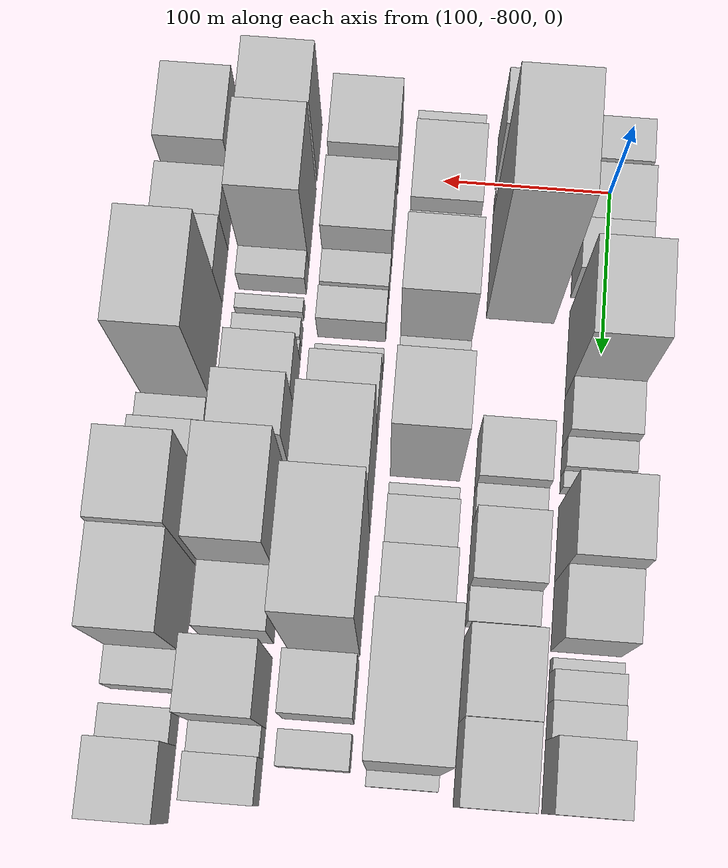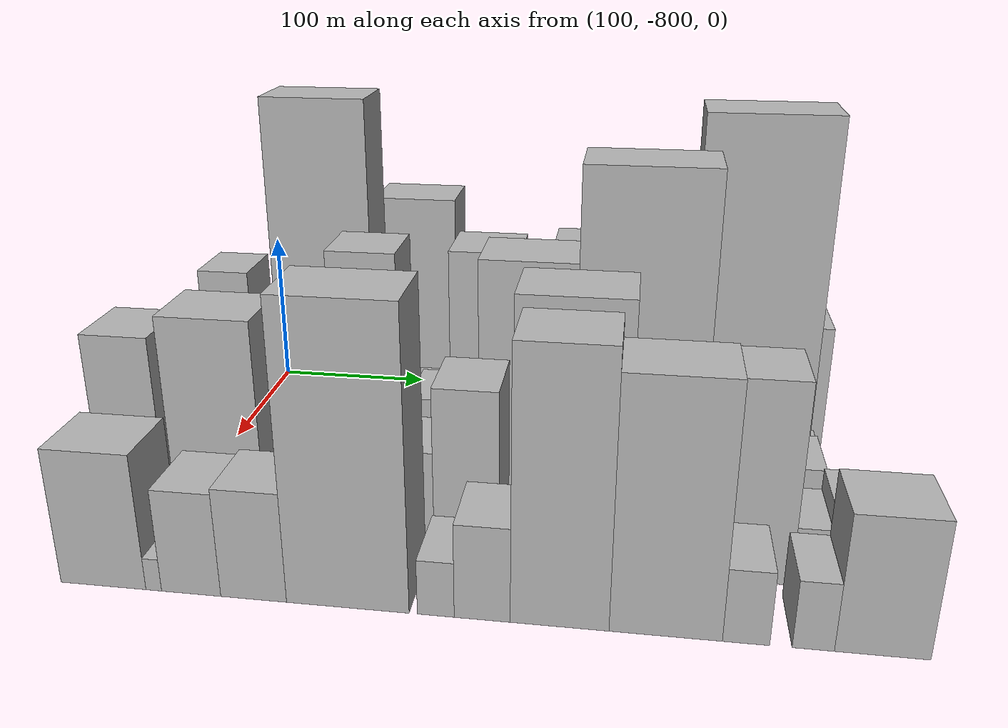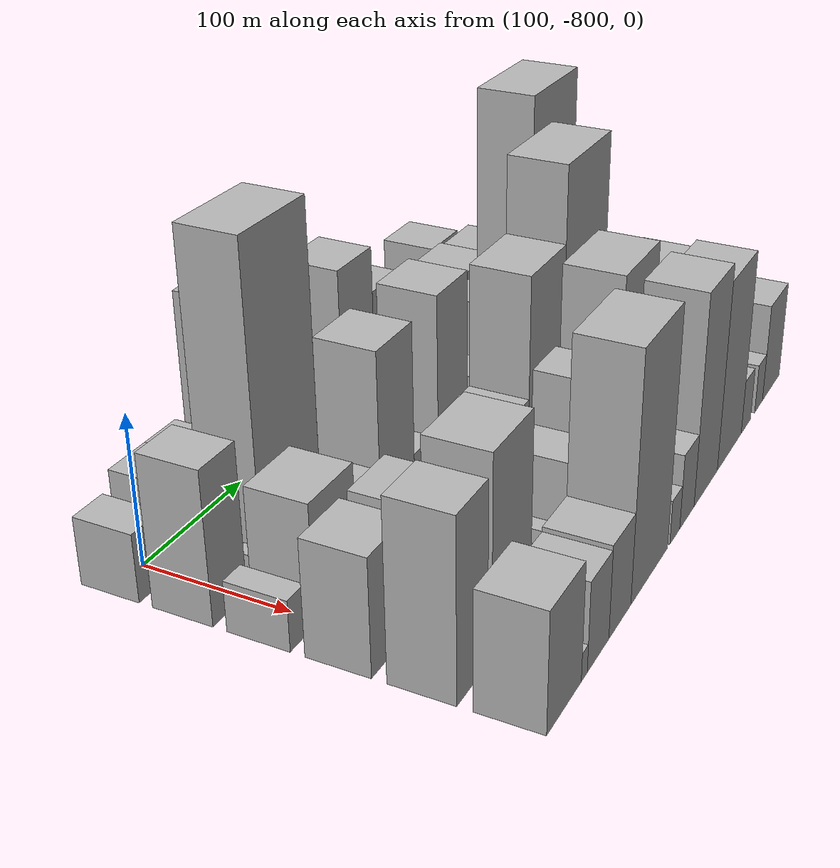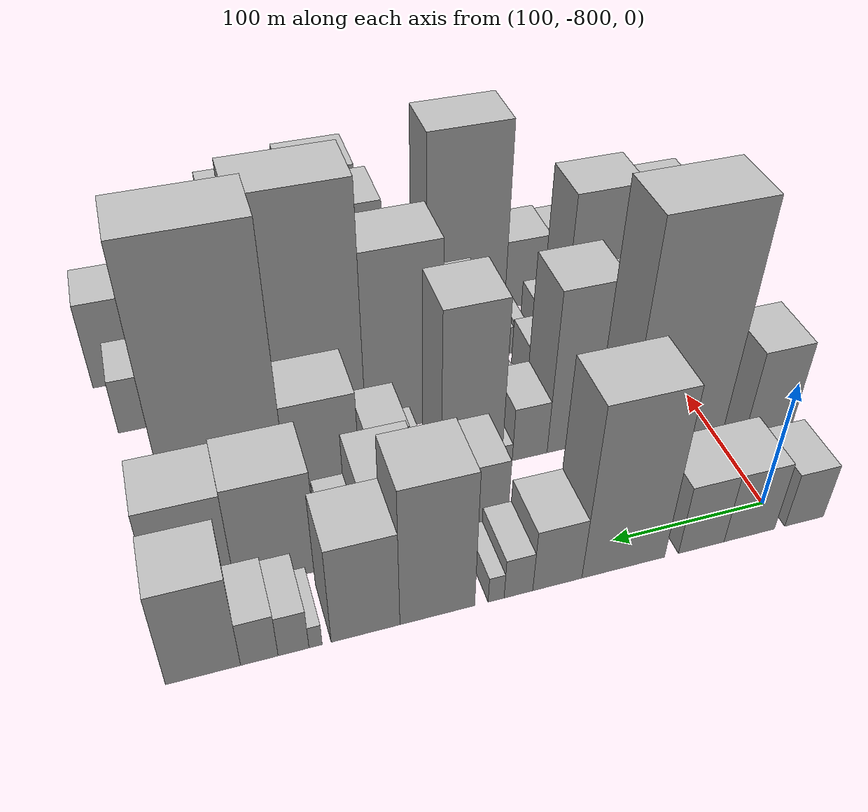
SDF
<sdf version="1.6">
 <world name="default">
  <model name="building_1">
   <static>1</static>
   <pose>100.0000 -816.8060 0 0.000000 0.000000 0.000000</pose>
   <link name="link">
    <pose>0 0 22.50 0 0 0</pose>
    <collision name="collision"><geometry><box><size>40.0000 26.3879 45.0000</size></box></geometry></collision>
    <visual name="visual">
     <cast_shadows>0</cast_shadows>
     <geometry><box><size>40.0000 26.3879 45.0000</size></box></geometry>
     <material>
      <script>
       <uri>model://HANNAS_wall/materials/scripts</uri>
       <uri>model://HANNAS_wall/materials/textures</uri>
       <name>vrc/HANNAS_wall</name>
      </script>
     </material>
    </visual>
   </link>
  </model>
  <model name="building_2">
   <static>1</static>
   <pose>100.0000 -779.7207 0 0.000000 0.000000 0.000000</pose>
   <link name="link">
    <pose>0 0 28.50 0 0 0</pose>
    <collision name="collision"><geometry><box><size>40.0000 33.7827 57.0000</size></box></geometry></collision>
    <visual name="visual">
     <cast_shadows>0</cast_shadows>
     <geometry><box><size>40.0000 33.7827 57.0000</size></box></geometry>
     <material>
      <script>
       <uri>model://HANNAS_wall/materials/scripts</uri>
       <uri>model://HANNAS_wall/materials/textures</uri>
       <name>vrc/HANNAS_wall</name>
      </script>
     </material>
    </visual>
   </link>
  </model>
  <model name="building_3">
   <static>1</static>
   <pose>100.0000 -747.8682 0 0.000000 0.000000 0.000000</pose>
   <link name="link">
    <pose>0 0 28.50 0 0 0</pose>
    <collision name="collision"><geometry><box><size>40.0000 29.9222 57.0000</size></box></geometry></collision>
    <visual name="visual">
     <cast_shadows>0</cast_shadows>
     <geometry><box><size>40.0000 29.9222 57.0000</size></box></geometry>
     <material>
      <script>
       <uri>model://HANNAS_wall/materials/scripts</uri>
       <uri>model://HANNAS_wall/materials/textures</uri>
       <name>vrc/HANNAS_wall</name>
      </script>
     </material>
    </visual>
   </link>
  </model>
  <model name="building_4">
   <static>1</static>
   <pose>100.0000 -697.7125 0 0.000000 0.000000 0.000000</pose>
   <link name="link">
    <pose>0 0 69.00 0 0 0</pose>
    <collision name="collision"><geometry><box><size>40.0000 52.3893 138.0000</size></box></geometry></collision>
    <visual name="visual">
     <cast_shadows>0</cast_shadows>
     <geometry><box><size>40.0000 52.3893 138.0000</size></box></geometry>
     <material>
      <script>
       <uri>model://HANNAS_wall/materials/scripts</uri>
       <uri>model://HANNAS_wall/materials/textures</uri>
       <name>vrc/HANNAS_wall</name>
      </script>
     </material>
    </visual>
   </link>
  </model>
  <model name="building_5">
   <static>1</static>
   <pose>100.0000 -656.4167 0 0.000000 0.000000 0.000000</pose>
   <link name="link">
    <pose>0 0 25.50 0 0 0</pose>
    <collision name="collision"><geometry><box><size>40.0000 30.2022 51.0000</size></box></geometry></collision>
    <visual name="visual">
     <cast_shadows>0</cast_shadows>
     <geometry><box><size>40.0000 30.2022 51.0000</size></box></geometry>
     <material>
      <script>
       <uri>model://HANNAS_wall/materials/scripts</uri>
       <uri>model://HANNAS_wall/materials/textures</uri>
       <name>vrc/HANNAS_wall</name>
      </script>
     </material>
    </visual>
   </link>
  </model>
  <model name="building_6">
   <static>1</static>
   <pose>100.0000 -632.6692 0 0.000000 0.000000 0.000000</pose>
   <link name="link">
    <pose>0 0 16.50 0 0 0</pose>
    <collision name="collision"><geometry><box><size>40.0000 17.2929 33.0000</size></box></geometry></collision>
    <visual name="visual">
     <cast_shadows>0</cast_shadows>
     <geometry><box><size>40.0000 17.2929 33.0000</size></box></geometry>
     <material>
      <script>
       <uri>model://HANNAS_wall/materials/scripts</uri>
       <uri>model://HANNAS_wall/materials/textures</uri>
       <name>vrc/HANNAS_wall</name>
      </script>
     </material>
    </visual>
   </link>
  </model>
  <model name="building_7">
   <static>1</static>
   <pose>100.0000 -619.2423 0 0.000000 0.000000 0.000000</pose>
   <link name="link">
    <pose>0 0 10.50 0 0 0</pose>
    <collision name="collision"><geometry><box><size>40.0000 9.5608 21.0000</size></box></geometry></collision>
    <visual name="visual">
     <cast_shadows>0</cast_shadows>
     <geometry><box><size>40.0000 9.5608 21.0000</size></box></geometry>
     <material>
      <script>
       <uri>model://HANNAS_wall/materials/scripts</uri>
       <uri>model://HANNAS_wall/materials/textures</uri>
       <name>vrc/HANNAS_wall</name>
      </script>
     </material>
    </visual>
   </link>
  </model>
  <model name="building_8">
   <static>1</static>
   <pose>100.0000 -584.6158 0 0.000000 0.000000 0.000000</pose>
   <link name="link">
    <pose>0 0 55.50 0 0 0</pose>
    <collision name="collision"><geometry><box><size>40.0000 43.6923 111.0000</size></box></geometry></collision>
    <visual name="visual">
     <cast_shadows>0</cast_shadows>
     <geometry><box><size>40.0000 43.6923 111.0000</size></box></geometry>
     <material>
      <script>
       <uri>model://HANNAS_wall/materials/scripts</uri>
       <uri>model://HANNAS_wall/materials/textures</uri>
       <name>vrc/HANNAS_wall</name>
      </script>
     </material>
    </visual>
   </link>
  </model>
  <model name="building_9">
   <static>1</static>
   <pose>100.0000 -543.2670 0 0.000000 0.000000 0.000000</pose>
   <link name="link">
    <pose>0 0 39.00 0 0 0</pose>
    <collision name="collision"><geometry><box><size>40.0000 39.0051 78.0000</size></box></geometry></collision>
    <visual name="visual">
     <cast_shadows>0</cast_shadows>
     <geometry><box><size>40.0000 39.0051 78.0000</size></box></geometry>
     <material>
      <script>
       <uri>model://HANNAS_wall/materials/scripts</uri>
       <uri>model://HANNAS_wall/materials/textures</uri>
       <name>vrc/HANNAS_wall</name>
      </script>
     </material>
    </visual>
   </link>
  </model>
  <model name="building_10">
   <static>1</static>
   <pose>100.0000 -515.0862 0 0.000000 0.000000 0.000000</pose>
   <link name="link">
    <pose>0 0 9.00 0 0 0</pose>
    <collision name="collision"><geometry><box><size>40.0000 7.3565 18.0000</size></box></geometry></collision>
    <visual name="visual">
     <cast_shadows>0</cast_shadows>
     <geometry><box><size>40.0000 7.3565 18.0000</size></box></geometry>
     <material>
      <script>
       <uri>model://HANNAS_wall/materials/scripts</uri>
       <uri>model://HANNAS_wall/materials/textures</uri>
       <name>vrc/HANNAS_wall</name>
      </script>
     </material>
    </visual>
   </link>
  </model>
  <model name="building_11">
   <static>1</static>
   <pose>100.0000 -502.9198 0 0.000000 0.000000 0.000000</pose>
   <link name="link">
    <pose>0 0 16.50 0 0 0</pose>
    <collision name="collision"><geometry><box><size>40.0000 16.9764 33.0000</size></box></geometry></collision>
    <visual name="visual">
     <cast_shadows>0</cast_shadows>
     <geometry><box><size>40.0000 16.9764 33.0000</size></box></geometry>
     <material>
      <script>
       <uri>model://HANNAS_wall/materials/scripts</uri>
       <uri>model://HANNAS_wall/materials/textures</uri>
       <name>vrc/HANNAS_wall</name>
      </script>
     </material>
    </visual>
   </link>
  </model>
  <model name="building_12">
   <static>1</static>
   <pose>100.0000 -484.2531 0 0.000000 0.000000 0.000000</pose>
   <link name="link">
    <pose>0 0 18.00 0 0 0</pose>
    <collision name="collision"><geometry><box><size>40.0000 20.3569 36.0000</size></box></geometry></collision>
    <visual name="visual">
     <cast_shadows>0</cast_shadows>
     <geometry><box><size>40.0000 20.3569 36.0000</size></box></geometry>
     <material>
      <script>
       <uri>model://HANNAS_wall/materials/scripts</uri>
       <uri>model://HANNAS_wall/materials/textures</uri>
       <name>vrc/HANNAS_wall</name>
      </script>
     </material>
    </visual>
   </link>
  </model>
  <model name="building_13">
   <static>1</static>
   <pose>100.0000 -454.1229 0 0.000000 0.000000 0.000000</pose>
   <link name="link">
    <pose>0 0 37.50 0 0 0</pose>
    <collision name="collision"><geometry><box><size>40.0000 39.9035 75.0000</size></box></geometry></collision>
    <visual name="visual">
     <cast_shadows>0</cast_shadows>
     <geometry><box><size>40.0000 39.9035 75.0000</size></box></geometry>
     <material>
      <script>
       <uri>model://HANNAS_wall/materials/scripts</uri>
       <uri>model://HANNAS_wall/materials/textures</uri>
       <name>vrc/HANNAS_wall</name>
      </script>
     </material>
    </visual>
   </link>
  </model>
  <model name="building_53">
   <static>1</static>
   <pose>149.0000 -813.5595 0 0.000000 0.000000 0.000000</pose>
   <link name="link">
    <pose>0 0 49.50 0 0 0</pose>
    <collision name="collision"><geometry><box><size>40.0000 32.8810 99.0000</size></box></geometry></collision>
    <visual name="visual">
     <cast_shadows>0</cast_shadows>
     <geometry><box><size>40.0000 32.8810 99.0000</size></box></geometry>
     <material>
      <script>
       <uri>model://HANNAS_wall/materials/scripts</uri>
       <uri>model://HANNAS_wall/materials/textures</uri>
       <name>vrc/HANNAS_wall</name>
      </script>
     </material>
    </visual>
   </link>
  </model>
  <model name="building_54">
   <static>1</static>
   <pose>149.0000 -785.2769 0 0.000000 0.000000 0.000000</pose>
   <link name="link">
    <pose>0 0 10.50 0 0 0</pose>
    <collision name="collision"><geometry><box><size>40.0000 9.6844 21.0000</size></box></geometry></collision>
    <visual name="visual">
     <cast_shadows>0</cast_shadows>
     <geometry><box><size>40.0000 9.6844 21.0000</size></box></geometry>
     <material>
      <script>
       <uri>model://HANNAS_wall/materials/scripts</uri>
       <uri>model://HANNAS_wall/materials/textures</uri>
       <name>vrc/HANNAS_wall</name>
      </script>
     </material>
    </visual>
   </link>
  </model>
  <model name="building_55">
   <static>1</static>
   <pose>149.0000 -748.3197 0 0.000000 0.000000 0.000000</pose>
   <link name="link">
    <pose>0 0 105.00 0 0 0</pose>
    <collision name="collision"><geometry><box><size>40.0000 64.2299 210.0000</size></box></geometry></collision>
    <visual name="visual">
     <cast_shadows>0</cast_shadows>
     <geometry><box><size>40.0000 64.2299 210.0000</size></box></geometry>
     <material>
      <script>
       <uri>model://HANNAS_wall/materials/scripts</uri>
       <uri>model://HANNAS_wall/materials/textures</uri>
       <name>vrc/HANNAS_wall</name>
      </script>
     </material>
    </visual>
   </link>
  </model>
  <model name="building_56">
   <static>1</static>
   <pose>149.0000 -627.0018 0 0.000000 0.000000 0.000000</pose>
   <link name="link">
    <pose>0 0 28.50 0 0 0</pose>
    <collision name="collision"><geometry><box><size>40.0000 33.4686 57.0000</size></box></geometry></collision>
    <visual name="visual">
     <cast_shadows>0</cast_shadows>
     <geometry><box><size>40.0000 33.4686 57.0000</size></box></geometry>
     <material>
      <script>
       <uri>model://HANNAS_wall/materials/scripts</uri>
       <uri>model://HANNAS_wall/materials/textures</uri>
       <name>vrc/HANNAS_wall</name>
      </script>
     </material>
    </visual>
   </link>
  </model>
  <model name="building_57">
   <static>1</static>
   <pose>149.0000 -601.2485 0 0.000000 0.000000 0.000000</pose>
   <link name="link">
    <pose>0 0 18.00 0 0 0</pose>
    <collision name="collision"><geometry><box><size>40.0000 18.0380 36.0000</size></box></geometry></collision>
    <visual name="visual">
     <cast_shadows>0</cast_shadows>
     <geometry><box><size>40.0000 18.0380 36.0000</size></box></geometry>
     <material>
      <script>
       <uri>model://HANNAS_wall/materials/scripts</uri>
       <uri>model://HANNAS_wall/materials/textures</uri>
       <name>vrc/HANNAS_wall</name>
      </script>
     </material>
    </visual>
   </link>
  </model>
  <model name="building_58">
   <static>1</static>
   <pose>149.0000 -572.6201 0 0.000000 0.000000 0.000000</pose>
   <link name="link">
    <pose>0 0 33.00 0 0 0</pose>
    <collision name="collision"><geometry><box><size>40.0000 39.2188 66.0000</size></box></geometry></collision>
    <visual name="visual">
     <cast_shadows>0</cast_shadows>
     <geometry><box><size>40.0000 39.2188 66.0000</size></box></geometry>
     <material>
      <script>
       <uri>model://HANNAS_wall/materials/scripts</uri>
       <uri>model://HANNAS_wall/materials/textures</uri>
       <name>vrc/HANNAS_wall</name>
      </script>
     </material>
    </visual>
   </link>
  </model>
  <model name="building_59">
   <static>1</static>
   <pose>149.0000 -543.3109 0 0.000000 0.000000 0.000000</pose>
   <link name="link">
    <pose>0 0 16.50 0 0 0</pose>
    <collision name="collision"><geometry><box><size>40.0000 19.3997 33.0000</size></box></geometry></collision>
    <visual name="visual">
     <cast_shadows>0</cast_shadows>
     <geometry><box><size>40.0000 19.3997 33.0000</size></box></geometry>
     <material>
      <script>
       <uri>model://HANNAS_wall/materials/scripts</uri>
       <uri>model://HANNAS_wall/materials/textures</uri>
       <name>vrc/HANNAS_wall</name>
      </script>
     </material>
    </visual>
   </link>
  </model>
  <model name="building_60">
   <static>1</static>
   <pose>149.0000 -503.5934 0 0.000000 0.000000 0.000000</pose>
   <link name="link">
    <pose>0 0 42.00 0 0 0</pose>
    <collision name="collision"><geometry><box><size>40.0000 48.0353 84.0000</size></box></geometry></collision>
    <visual name="visual">
     <cast_shadows>0</cast_shadows>
     <geometry><box><size>40.0000 48.0353 84.0000</size></box></geometry>
     <material>
      <script>
       <uri>model://HANNAS_wall/materials/scripts</uri>
       <uri>model://HANNAS_wall/materials/textures</uri>
       <name>vrc/HANNAS_wall</name>
      </script>
     </material>
    </visual>
   </link>
  </model>
  <model name="building_61">
   <static>1</static>
   <pose>149.0000 -456.7416 0 0.000000 0.000000 0.000000</pose>
   <link name="link">
    <pose>0 0 40.50 0 0 0</pose>
    <collision name="collision"><geometry><box><size>40.0000 45.6681 81.0000</size></box></geometry></collision>
    <visual name="visual">
     <cast_shadows>0</cast_shadows>
     <geometry><box><size>40.0000 45.6681 81.0000</size></box></geometry>
     <material>
      <script>
       <uri>model://HANNAS_wall/materials/scripts</uri>
       <uri>model://HANNAS_wall/materials/textures</uri>
       <name>vrc/HANNAS_wall</name>
      </script>
     </material>
    </visual>
   </link>
  </model>
  <model name="building_95">
   <static>1</static>
   <pose>198.0000 -821.6058 0 0.000000 0.000000 0.000000</pose>
   <link name="link">
    <pose>0 0 16.50 0 0 0</pose>
    <collision name="collision"><geometry><box><size>40.0000 16.7884 33.0000</size></box></geometry></collision>
    <visual name="visual">
     <cast_shadows>0</cast_shadows>
     <geometry><box><size>40.0000 16.7884 33.0000</size></box></geometry>
     <material>
      <script>
       <uri>model://HANNAS_wall/materials/scripts</uri>
       <uri>model://HANNAS_wall/materials/textures</uri>
       <name>vrc/HANNAS_wall</name>
      </script>
     </material>
    </visual>
   </link>
  </model>
  <model name="building_96">
   <static>1</static>
   <pose>198.0000 -782.1091 0 0.000000 0.000000 0.000000</pose>
   <link name="link">
    <pose>0 0 39.00 0 0 0</pose>
    <collision name="collision"><geometry><box><size>40.0000 46.2050 78.0000</size></box></geometry></collision>
    <visual name="visual">
     <cast_shadows>0</cast_shadows>
     <geometry><box><size>40.0000 46.2050 78.0000</size></box></geometry>
     <material>
      <script>
       <uri>model://HANNAS_wall/materials/scripts</uri>
       <uri>model://HANNAS_wall/materials/textures</uri>
       <name>vrc/HANNAS_wall</name>
      </script>
     </material>
    </visual>
   </link>
  </model>
  <model name="building_97">
   <static>1</static>
   <pose>198.0000 -744.5880 0 0.000000 0.000000 0.000000</pose>
   <link name="link">
    <pose>0 0 28.50 0 0 0</pose>
    <collision name="collision"><geometry><box><size>40.0000 28.8371 57.0000</size></box></geometry></collision>
    <visual name="visual">
     <cast_shadows>0</cast_shadows>
     <geometry><box><size>40.0000 28.8371 57.0000</size></box></geometry>
     <material>
      <script>
       <uri>model://HANNAS_wall/materials/scripts</uri>
       <uri>model://HANNAS_wall/materials/textures</uri>
       <name>vrc/HANNAS_wall</name>
      </script>
     </material>
    </visual>
   </link>
  </model>
  <model name="building_98">
   <static>1</static>
   <pose>198.0000 -709.5021 0 0.000000 0.000000 0.000000</pose>
   <link name="link">
    <pose>0 0 66.00 0 0 0</pose>
    <collision name="collision"><geometry><box><size>40.0000 41.3348 132.0000</size></box></geometry></collision>
    <visual name="visual">
     <cast_shadows>0</cast_shadows>
     <geometry><box><size>40.0000 41.3348 132.0000</size></box></geometry>
     <material>
      <script>
       <uri>model://HANNAS_wall/materials/scripts</uri>
       <uri>model://HANNAS_wall/materials/textures</uri>
       <name>vrc/HANNAS_wall</name>
      </script>
     </material>
    </visual>
   </link>
  </model>
  <model name="building_99">
   <static>1</static>
   <pose>198.0000 -676.8937 0 0.000000 0.000000 0.000000</pose>
   <link name="link">
    <pose>0 0 22.50 0 0 0</pose>
    <collision name="collision"><geometry><box><size>40.0000 23.8821 45.0000</size></box></geometry></collision>
    <visual name="visual">
     <cast_shadows>0</cast_shadows>
     <geometry><box><size>40.0000 23.8821 45.0000</size></box></geometry>
     <material>
      <script>
       <uri>model://HANNAS_wall/materials/scripts</uri>
       <uri>model://HANNAS_wall/materials/textures</uri>
       <name>vrc/HANNAS_wall</name>
      </script>
     </material>
    </visual>
   </link>
  </model>
  <model name="building_100">
   <static>1</static>
   <pose>198.0000 -661.4056 0 0.000000 0.000000 0.000000</pose>
   <link name="link">
    <pose>0 0 7.50 0 0 0</pose>
    <collision name="collision"><geometry><box><size>40.0000 7.0939 15.0000</size></box></geometry></collision>
    <visual name="visual">
     <cast_shadows>0</cast_shadows>
     <geometry><box><size>40.0000 7.0939 15.0000</size></box></geometry>
     <material>
      <script>
       <uri>model://HANNAS_wall/materials/scripts</uri>
       <uri>model://HANNAS_wall/materials/textures</uri>
       <name>vrc/HANNAS_wall</name>
      </script>
     </material>
    </visual>
   </link>
  </model>
  <model name="building_101">
   <static>1</static>
   <pose>198.0000 -637.5629 0 0.000000 0.000000 0.000000</pose>
   <link name="link">
    <pose>0 0 67.50 0 0 0</pose>
    <collision name="collision"><geometry><box><size>40.0000 40.5916 135.0000</size></box></geometry></collision>
    <visual name="visual">
     <cast_shadows>0</cast_shadows>
     <geometry><box><size>40.0000 40.5916 135.0000</size></box></geometry>
     <material>
      <script>
       <uri>model://HANNAS_wall/materials/scripts</uri>
       <uri>model://HANNAS_wall/materials/textures</uri>
       <name>vrc/HANNAS_wall</name>
      </script>
     </material>
    </visual>
   </link>
  </model>
  <model name="building_102">
   <static>1</static>
   <pose>198.0000 -602.7973 0 0.000000 0.000000 0.000000</pose>
   <link name="link">
    <pose>0 0 13.50 0 0 0</pose>
    <collision name="collision"><geometry><box><size>40.0000 10.9395 27.0000</size></box></geometry></collision>
    <visual name="visual">
     <cast_shadows>0</cast_shadows>
     <geometry><box><size>40.0000 10.9395 27.0000</size></box></geometry>
     <material>
      <script>
       <uri>model://HANNAS_wall/materials/scripts</uri>
       <uri>model://HANNAS_wall/materials/textures</uri>
       <name>vrc/HANNAS_wall</name>
      </script>
     </material>
    </visual>
   </link>
  </model>
  <model name="building_103">
   <static>1</static>
   <pose>198.0000 -583.7330 0 0.000000 0.000000 0.000000</pose>
   <link name="link">
    <pose>0 0 25.50 0 0 0</pose>
    <collision name="collision"><geometry><box><size>40.0000 27.1892 51.0000</size></box></geometry></collision>
    <visual name="visual">
     <cast_shadows>0</cast_shadows>
     <geometry><box><size>40.0000 27.1892 51.0000</size></box></geometry>
     <material>
      <script>
       <uri>model://HANNAS_wall/materials/scripts</uri>
       <uri>model://HANNAS_wall/materials/textures</uri>
       <name>vrc/HANNAS_wall</name>
      </script>
     </material>
    </visual>
   </link>
  </model>
  <model name="building_104">
   <static>1</static>
   <pose>198.0000 -542.9168 0 0.000000 0.000000 0.000000</pose>
   <link name="link">
    <pose>0 0 43.50 0 0 0</pose>
    <collision name="collision"><geometry><box><size>40.0000 44.4431 87.0000</size></box></geometry></collision>
    <visual name="visual">
     <cast_shadows>0</cast_shadows>
     <geometry><box><size>40.0000 44.4431 87.0000</size></box></geometry>
     <material>
      <script>
       <uri>model://HANNAS_wall/materials/scripts</uri>
       <uri>model://HANNAS_wall/materials/textures</uri>
       <name>vrc/HANNAS_wall</name>
      </script>
     </material>
    </visual>
   </link>
  </model>
  <model name="building_105">
   <static>1</static>
   <pose>198.0000 -485.2934 0 0.000000 0.000000 0.000000</pose>
   <link name="link">
    <pose>0 0 108.00 0 0 0</pose>
    <collision name="collision"><geometry><box><size>40.0000 70.8036 216.0000</size></box></geometry></collision>
    <visual name="visual">
     <cast_shadows>0</cast_shadows>
     <geometry><box><size>40.0000 70.8036 216.0000</size></box></geometry>
     <material>
      <script>
       <uri>model://HANNAS_wall/materials/scripts</uri>
       <uri>model://HANNAS_wall/materials/textures</uri>
       <name>vrc/HANNAS_wall</name>
      </script>
     </material>
    </visual>
   </link>
  </model>
  <model name="building_106">
   <static>1</static>
   <pose>198.0000 -445.4952 0 0.000000 0.000000 0.000000</pose>
   <link name="link">
    <pose>0 0 9.00 0 0 0</pose>
    <collision name="collision"><geometry><box><size>40.0000 8.7928 18.0000</size></box></geometry></collision>
    <visual name="visual">
     <cast_shadows>0</cast_shadows>
     <geometry><box><size>40.0000 8.7928 18.0000</size></box></geometry>
     <material>
      <script>
       <uri>model://HANNAS_wall/materials/scripts</uri>
       <uri>model://HANNAS_wall/materials/textures</uri>
       <name>vrc/HANNAS_wall</name>
      </script>
     </material>
    </visual>
   </link>
  </model>
  <model name="building_144">
   <static>1</static>
   <pose>247.0000 -809.3999 0 0.000000 0.000000 0.000000</pose>
   <link name="link">
    <pose>0 0 37.50 0 0 0</pose>
    <collision name="collision"><geometry><box><size>40.0000 41.2002 75.0000</size></box></geometry></collision>
    <visual name="visual">
     <cast_shadows>0</cast_shadows>
     <geometry><box><size>40.0000 41.2002 75.0000</size></box></geometry>
     <material>
      <script>
       <uri>model://HANNAS_wall/materials/scripts</uri>
       <uri>model://HANNAS_wall/materials/textures</uri>
       <name>vrc/HANNAS_wall</name>
      </script>
     </material>
    </visual>
   </link>
  </model>
  <model name="building_145">
   <static>1</static>
   <pose>247.0000 -760.1838 0 0.000000 0.000000 0.000000</pose>
   <link name="link">
    <pose>0 0 37.50 0 0 0</pose>
    <collision name="collision"><geometry><box><size>40.0000 41.2320 75.0000</size></box></geometry></collision>
    <visual name="visual">
     <cast_shadows>0</cast_shadows>
     <geometry><box><size>40.0000 41.2320 75.0000</size></box></geometry>
     <material>
      <script>
       <uri>model://HANNAS_wall/materials/scripts</uri>
       <uri>model://HANNAS_wall/materials/textures</uri>
       <name>vrc/HANNAS_wall</name>
      </script>
     </material>
    </visual>
   </link>
  </model>
  <model name="building_146">
   <static>1</static>
   <pose>247.0000 -729.6628 0 0.000000 0.000000 0.000000</pose>
   <link name="link">
    <pose>0 0 18.00 0 0 0</pose>
    <collision name="collision"><geometry><box><size>40.0000 19.8100 36.0000</size></box></geometry></collision>
    <visual name="visual">
     <cast_shadows>0</cast_shadows>
     <geometry><box><size>40.0000 19.8100 36.0000</size></box></geometry>
     <material>
      <script>
       <uri>model://HANNAS_wall/materials/scripts</uri>
       <uri>model://HANNAS_wall/materials/textures</uri>
       <name>vrc/HANNAS_wall</name>
      </script>
     </material>
    </visual>
   </link>
  </model>
  <model name="building_147">
   <static>1</static>
   <pose>247.0000 -706.9729 0 0.000000 0.000000 0.000000</pose>
   <link name="link">
    <pose>0 0 19.50 0 0 0</pose>
    <collision name="collision"><geometry><box><size>40.0000 19.5697 39.0000</size></box></geometry></collision>
    <visual name="visual">
     <cast_shadows>0</cast_shadows>
     <geometry><box><size>40.0000 19.5697 39.0000</size></box></geometry>
     <material>
      <script>
       <uri>model://HANNAS_wall/materials/scripts</uri>
       <uri>model://HANNAS_wall/materials/textures</uri>
       <name>vrc/HANNAS_wall</name>
      </script>
     </material>
    </visual>
   </link>
  </model>
  <model name="building_148">
   <static>1</static>
   <pose>247.0000 -682.5648 0 0.000000 0.000000 0.000000</pose>
   <link name="link">
    <pose>0 0 10.50 0 0 0</pose>
    <collision name="collision"><geometry><box><size>40.0000 9.2465 21.0000</size></box></geometry></collision>
    <visual name="visual">
     <cast_shadows>0</cast_shadows>
     <geometry><box><size>40.0000 9.2465 21.0000</size></box></geometry>
     <material>
      <script>
       <uri>model://HANNAS_wall/materials/scripts</uri>
       <uri>model://HANNAS_wall/materials/textures</uri>
       <name>vrc/HANNAS_wall</name>
      </script>
     </material>
    </visual>
   </link>
  </model>
  <model name="building_149">
   <static>1</static>
   <pose>247.0000 -674.8567 0 0.000000 0.000000 0.000000</pose>
   <link name="link">
    <pose>0 0 7.50 0 0 0</pose>
    <collision name="collision"><geometry><box><size>40.0000 6.1698 15.0000</size></box></geometry></collision>
    <visual name="visual">
     <cast_shadows>0</cast_shadows>
     <geometry><box><size>40.0000 6.1698 15.0000</size></box></geometry>
     <material>
      <script>
       <uri>model://HANNAS_wall/materials/scripts</uri>
       <uri>model://HANNAS_wall/materials/textures</uri>
       <name>vrc/HANNAS_wall</name>
      </script>
     </material>
    </visual>
   </link>
  </model>
  <model name="building_150">
   <static>1</static>
   <pose>247.0000 -652.5257 0 0.000000 0.000000 0.000000</pose>
   <link name="link">
    <pose>0 0 33.00 0 0 0</pose>
    <collision name="collision"><geometry><box><size>40.0000 38.4922 66.0000</size></box></geometry></collision>
    <visual name="visual">
     <cast_shadows>0</cast_shadows>
     <geometry><box><size>40.0000 38.4922 66.0000</size></box></geometry>
     <material>
      <script>
       <uri>model://HANNAS_wall/materials/scripts</uri>
       <uri>model://HANNAS_wall/materials/textures</uri>
       <name>vrc/HANNAS_wall</name>
      </script>
     </material>
    </visual>
   </link>
  </model>
  <model name="building_151">
   <static>1</static>
   <pose>247.0000 -607.2660 0 0.000000 0.000000 0.000000</pose>
   <link name="link">
    <pose>0 0 73.50 0 0 0</pose>
    <collision name="collision"><geometry><box><size>40.0000 52.0270 147.0000</size></box></geometry></collision>
    <visual name="visual">
     <cast_shadows>0</cast_shadows>
     <geometry><box><size>40.0000 52.0270 147.0000</size></box></geometry>
     <material>
      <script>
       <uri>model://HANNAS_wall/materials/scripts</uri>
       <uri>model://HANNAS_wall/materials/textures</uri>
       <name>vrc/HANNAS_wall</name>
      </script>
     </material>
    </visual>
   </link>
  </model>
  <model name="building_152">
   <static>1</static>
   <pose>247.0000 -546.7218 0 0.000000 0.000000 0.000000</pose>
   <link name="link">
    <pose>0 0 99.00 0 0 0</pose>
    <collision name="collision"><geometry><box><size>40.0000 69.0615 198.0000</size></box></geometry></collision>
    <visual name="visual">
     <cast_shadows>0</cast_shadows>
     <geometry><box><size>40.0000 69.0615 198.0000</size></box></geometry>
     <material>
      <script>
       <uri>model://HANNAS_wall/materials/scripts</uri>
       <uri>model://HANNAS_wall/materials/textures</uri>
       <name>vrc/HANNAS_wall</name>
      </script>
     </material>
    </visual>
   </link>
  </model>
  <model name="building_153">
   <static>1</static>
   <pose>247.0000 -491.3449 0 0.000000 0.000000 0.000000</pose>
   <link name="link">
    <pose>0 0 33.00 0 0 0</pose>
    <collision name="collision"><geometry><box><size>40.0000 33.6923 66.0000</size></box></geometry></collision>
    <visual name="visual">
     <cast_shadows>0</cast_shadows>
     <geometry><box><size>40.0000 33.6923 66.0000</size></box></geometry>
     <material>
      <script>
       <uri>model://HANNAS_wall/materials/scripts</uri>
       <uri>model://HANNAS_wall/materials/textures</uri>
       <name>vrc/HANNAS_wall</name>
      </script>
     </material>
    </visual>
   </link>
  </model>
  <model name="building_154">
   <static>1</static>
   <pose>247.0000 -457.6352 0 0.000000 0.000000 0.000000</pose>
   <link name="link">
    <pose>0 0 19.50 0 0 0</pose>
    <collision name="collision"><geometry><box><size>40.0000 19.7271 39.0000</size></box></geometry></collision>
    <visual name="visual">
     <cast_shadows>0</cast_shadows>
     <geometry><box><size>40.0000 19.7271 39.0000</size></box></geometry>
     <material>
      <script>
       <uri>model://HANNAS_wall/materials/scripts</uri>
       <uri>model://HANNAS_wall/materials/textures</uri>
       <name>vrc/HANNAS_wall</name>
      </script>
     </material>
    </visual>
   </link>
  </model>
  <model name="building_189">
   <static>1</static>
   <pose>296.0000 -811.9413 0 0.000000 0.000000 0.000000</pose>
   <link name="link">
    <pose>0 0 57.00 0 0 0</pose>
    <collision name="collision"><geometry><box><size>40.0000 36.1173 114.0000</size></box></geometry></collision>
    <visual name="visual">
     <cast_shadows>0</cast_shadows>
     <geometry><box><size>40.0000 36.1173 114.0000</size></box></geometry>
     <material>
      <script>
       <uri>model://HANNAS_wall/materials/scripts</uri>
       <uri>model://HANNAS_wall/materials/textures</uri>
       <name>vrc/HANNAS_wall</name>
      </script>
     </material>
    </visual>
   </link>
  </model>
  <model name="building_190">
   <static>1</static>
   <pose>296.0000 -764.2333 0 0.000000 0.000000 0.000000</pose>
   <link name="link">
    <pose>0 0 63.00 0 0 0</pose>
    <collision name="collision"><geometry><box><size>40.0000 49.2987 126.0000</size></box></geometry></collision>
    <visual name="visual">
     <cast_shadows>0</cast_shadows>
     <geometry><box><size>40.0000 49.2987 126.0000</size></box></geometry>
     <material>
      <script>
       <uri>model://HANNAS_wall/materials/scripts</uri>
       <uri>model://HANNAS_wall/materials/textures</uri>
       <name>vrc/HANNAS_wall</name>
      </script>
     </material>
    </visual>
   </link>
  </model>
  <model name="building_191">
   <static>1</static>
   <pose>296.0000 -731.1359 0 0.000000 0.000000 0.000000</pose>
   <link name="link">
    <pose>0 0 15.00 0 0 0</pose>
    <collision name="collision"><geometry><box><size>40.0000 16.8961 30.0000</size></box></geometry></collision>
    <visual name="visual">
     <cast_shadows>0</cast_shadows>
     <geometry><box><size>40.0000 16.8961 30.0000</size></box></geometry>
     <material>
      <script>
       <uri>model://HANNAS_wall/materials/scripts</uri>
       <uri>model://HANNAS_wall/materials/textures</uri>
       <name>vrc/HANNAS_wall</name>
      </script>
     </material>
    </visual>
   </link>
  </model>
  <model name="building_192">
   <static>1</static>
   <pose>296.0000 -710.3313 0 0.000000 0.000000 0.000000</pose>
   <link name="link">
    <pose>0 0 9.00 0 0 0</pose>
    <collision name="collision"><geometry><box><size>40.0000 8.7132 18.0000</size></box></geometry></collision>
    <visual name="visual">
     <cast_shadows>0</cast_shadows>
     <geometry><box><size>40.0000 8.7132 18.0000</size></box></geometry>
     <material>
      <script>
       <uri>model://HANNAS_wall/materials/scripts</uri>
       <uri>model://HANNAS_wall/materials/textures</uri>
       <name>vrc/HANNAS_wall</name>
      </script>
     </material>
    </visual>
   </link>
  </model>
  <model name="building_193">
   <static>1</static>
   <pose>296.0000 -695.1715 0 0.000000 0.000000 0.000000</pose>
   <link name="link">
    <pose>0 0 12.00 0 0 0</pose>
    <collision name="collision"><geometry><box><size>40.0000 11.6064 24.0000</size></box></geometry></collision>
    <visual name="visual">
     <cast_shadows>0</cast_shadows>
     <geometry><box><size>40.0000 11.6064 24.0000</size></box></geometry>
     <material>
      <script>
       <uri>model://HANNAS_wall/materials/scripts</uri>
       <uri>model://HANNAS_wall/materials/textures</uri>
       <name>vrc/HANNAS_wall</name>
      </script>
     </material>
    </visual>
   </link>
  </model>
  <model name="building_194">
   <static>1</static>
   <pose>296.0000 -685.3940 0 0.000000 0.000000 0.000000</pose>
   <link name="link">
    <pose>0 0 9.00 0 0 0</pose>
    <collision name="collision"><geometry><box><size>40.0000 7.9486 18.0000</size></box></geometry></collision>
    <visual name="visual">
     <cast_shadows>0</cast_shadows>
     <geometry><box><size>40.0000 7.9486 18.0000</size></box></geometry>
     <material>
      <script>
       <uri>model://HANNAS_wall/materials/scripts</uri>
       <uri>model://HANNAS_wall/materials/textures</uri>
       <name>vrc/HANNAS_wall</name>
      </script>
     </material>
    </visual>
   </link>
  </model>
  <model name="building_195">
   <static>1</static>
   <pose>296.0000 -665.3729 0 0.000000 0.000000 0.000000</pose>
   <link name="link">
    <pose>0 0 30.00 0 0 0</pose>
    <collision name="collision"><geometry><box><size>40.0000 32.0935 60.0000</size></box></geometry></collision>
    <visual name="visual">
     <cast_shadows>0</cast_shadows>
     <geometry><box><size>40.0000 32.0935 60.0000</size></box></geometry>
     <material>
      <script>
       <uri>model://HANNAS_wall/materials/scripts</uri>
       <uri>model://HANNAS_wall/materials/textures</uri>
       <name>vrc/HANNAS_wall</name>
      </script>
     </material>
    </visual>
   </link>
  </model>
  <model name="building_196">
   <static>1</static>
   <pose>296.0000 -632.4021 0 0.000000 0.000000 0.000000</pose>
   <link name="link">
    <pose>0 0 48.00 0 0 0</pose>
    <collision name="collision"><geometry><box><size>40.0000 33.8480 96.0000</size></box></geometry></collision>
    <visual name="visual">
     <cast_shadows>0</cast_shadows>
     <geometry><box><size>40.0000 33.8480 96.0000</size></box></geometry>
     <material>
      <script>
       <uri>model://HANNAS_wall/materials/scripts</uri>
       <uri>model://HANNAS_wall/materials/textures</uri>
       <name>vrc/HANNAS_wall</name>
      </script>
     </material>
    </visual>
   </link>
  </model>
  <model name="building_197">
   <static>1</static>
   <pose>296.0000 -579.5757 0 0.000000 0.000000 0.000000</pose>
   <link name="link">
    <pose>0 0 73.50 0 0 0</pose>
    <collision name="collision"><geometry><box><size>40.0000 57.8050 147.0000</size></box></geometry></collision>
    <visual name="visual">
     <cast_shadows>0</cast_shadows>
     <geometry><box><size>40.0000 57.8050 147.0000</size></box></geometry>
     <material>
      <script>
       <uri>model://HANNAS_wall/materials/scripts</uri>
       <uri>model://HANNAS_wall/materials/textures</uri>
       <name>vrc/HANNAS_wall</name>
      </script>
     </material>
    </visual>
   </link>
  </model>
  <model name="building_198">
   <static>1</static>
   <pose>296.0000 -533.1727 0 0.000000 0.000000 0.000000</pose>
   <link name="link">
    <pose>0 0 34.50 0 0 0</pose>
    <collision name="collision"><geometry><box><size>40.0000 35.0010 69.0000</size></box></geometry></collision>
    <visual name="visual">
     <cast_shadows>0</cast_shadows>
     <geometry><box><size>40.0000 35.0010 69.0000</size></box></geometry>
     <material>
      <script>
       <uri>model://HANNAS_wall/materials/scripts</uri>
       <uri>model://HANNAS_wall/materials/textures</uri>
       <name>vrc/HANNAS_wall</name>
      </script>
     </material>
    </visual>
   </link>
  </model>
  <model name="building_199">
   <static>1</static>
   <pose>296.0000 -487.9956 0 0.000000 0.000000 0.000000</pose>
   <link name="link">
    <pose>0 0 55.50 0 0 0</pose>
    <collision name="collision"><geometry><box><size>40.0000 39.3532 111.0000</size></box></geometry></collision>
    <visual name="visual">
     <cast_shadows>0</cast_shadows>
     <geometry><box><size>40.0000 39.3532 111.0000</size></box></geometry>
     <material>
      <script>
       <uri>model://HANNAS_wall/materials/scripts</uri>
       <uri>model://HANNAS_wall/materials/textures</uri>
       <name>vrc/HANNAS_wall</name>
      </script>
     </material>
    </visual>
   </link>
  </model>
  <model name="building_200">
   <static>1</static>
   <pose>296.0000 -459.9178 0 0.000000 0.000000 0.000000</pose>
   <link name="link">
    <pose>0 0 16.50 0 0 0</pose>
    <collision name="collision"><geometry><box><size>40.0000 16.8024 33.0000</size></box></geometry></collision>
    <visual name="visual">
     <cast_shadows>0</cast_shadows>
     <geometry><box><size>40.0000 16.8024 33.0000</size></box></geometry>
     <material>
      <script>
       <uri>model://HANNAS_wall/materials/scripts</uri>
       <uri>model://HANNAS_wall/materials/textures</uri>
       <name>vrc/HANNAS_wall</name>
      </script>
     </material>
    </visual>
   </link>
  </model>
  <model name="building_201">
   <static>1</static>
   <pose>296.0000 -438.7414 0 0.000000 0.000000 0.000000</pose>
   <link name="link">
    <pose>0 0 22.50 0 0 0</pose>
    <collision name="collision"><geometry><box><size>40.0000 25.5503 45.0000</size></box></geometry></collision>
    <visual name="visual">
     <cast_shadows>0</cast_shadows>
     <geometry><box><size>40.0000 25.5503 45.0000</size></box></geometry>
     <material>
      <script>
       <uri>model://HANNAS_wall/materials/scripts</uri>
       <uri>model://HANNAS_wall/materials/textures</uri>
       <name>vrc/HANNAS_wall</name>
      </script>
     </material>
    </visual>
   </link>
  </model>
  <model name="building_239">
   <static>1</static>
   <pose>345.0000 -807.5695 0 0.000000 0.000000 0.000000</pose>
   <link name="link">
    <pose>0 0 37.50 0 0 0</pose>
    <collision name="collision"><geometry><box><size>40.0000 44.8609 75.0000</size></box></geometry></collision>
    <visual name="visual">
     <cast_shadows>0</cast_shadows>
     <geometry><box><size>40.0000 44.8609 75.0000</size></box></geometry>
     <material>
      <script>
       <uri>model://HANNAS_wall/materials/scripts</uri>
       <uri>model://HANNAS_wall/materials/textures</uri>
       <name>vrc/HANNAS_wall</name>
      </script>
     </material>
    </visual>
   </link>
  </model>
  <model name="building_240">
   <static>1</static>
   <pose>345.0000 -781.0498 0 0.000000 0.000000 0.000000</pose>
   <link name="link">
    <pose>0 0 9.00 0 0 0</pose>
    <collision name="collision"><geometry><box><size>40.0000 8.1786 18.0000</size></box></geometry></collision>
    <visual name="visual">
     <cast_shadows>0</cast_shadows>
     <geometry><box><size>40.0000 8.1786 18.0000</size></box></geometry>
     <material>
      <script>
       <uri>model://HANNAS_wall/materials/scripts</uri>
       <uri>model://HANNAS_wall/materials/textures</uri>
       <name>vrc/HANNAS_wall</name>
      </script>
     </material>
    </visual>
   </link>
  </model>
  <model name="building_241">
   <static>1</static>
   <pose>345.0000 -761.6688 0 0.000000 0.000000 0.000000</pose>
   <link name="link">
    <pose>0 0 28.50 0 0 0</pose>
    <collision name="collision"><geometry><box><size>40.0000 30.5832 57.0000</size></box></geometry></collision>
    <visual name="visual">
     <cast_shadows>0</cast_shadows>
     <geometry><box><size>40.0000 30.5832 57.0000</size></box></geometry>
     <material>
      <script>
       <uri>model://HANNAS_wall/materials/scripts</uri>
       <uri>model://HANNAS_wall/materials/textures</uri>
       <name>vrc/HANNAS_wall</name>
      </script>
     </material>
    </visual>
   </link>
  </model>
  <model name="building_242">
   <static>1</static>
   <pose>345.0000 -729.6527 0 0.000000 0.000000 0.000000</pose>
   <link name="link">
    <pose>0 0 30.00 0 0 0</pose>
    <collision name="collision"><geometry><box><size>40.0000 33.4490 60.0000</size></box></geometry></collision>
    <visual name="visual">
     <cast_shadows>0</cast_shadows>
     <geometry><box><size>40.0000 33.4490 60.0000</size></box></geometry>
     <material>
      <script>
       <uri>model://HANNAS_wall/materials/scripts</uri>
       <uri>model://HANNAS_wall/materials/textures</uri>
       <name>vrc/HANNAS_wall</name>
      </script>
     </material>
    </visual>
   </link>
  </model>
  <model name="building_243">
   <static>1</static>
   <pose>345.0000 -682.4980 0 0.000000 0.000000 0.000000</pose>
   <link name="link">
    <pose>0 0 79.50 0 0 0</pose>
    <collision name="collision"><geometry><box><size>40.0000 60.8605 159.0000</size></box></geometry></collision>
    <visual name="visual">
     <cast_shadows>0</cast_shadows>
     <geometry><box><size>40.0000 60.8605 159.0000</size></box></geometry>
     <material>
      <script>
       <uri>model://HANNAS_wall/materials/scripts</uri>
       <uri>model://HANNAS_wall/materials/textures</uri>
       <name>vrc/HANNAS_wall</name>
      </script>
     </material>
    </visual>
   </link>
  </model>
  <model name="building_244">
   <static>1</static>
   <pose>345.0000 -639.1231 0 0.000000 0.000000 0.000000</pose>
   <link name="link">
    <pose>0 0 15.00 0 0 0</pose>
    <collision name="collision"><geometry><box><size>40.0000 17.8892 30.0000</size></box></geometry></collision>
    <visual name="visual">
     <cast_shadows>0</cast_shadows>
     <geometry><box><size>40.0000 17.8892 30.0000</size></box></geometry>
     <material>
      <script>
       <uri>model://HANNAS_wall/materials/scripts</uri>
       <uri>model://HANNAS_wall/materials/textures</uri>
       <name>vrc/HANNAS_wall</name>
      </script>
     </material>
    </visual>
   </link>
  </model>
  <model name="building_245">
   <static>1</static>
   <pose>345.0000 -616.7638 0 0.000000 0.000000 0.000000</pose>
   <link name="link">
    <pose>0 0 25.50 0 0 0</pose>
    <collision name="collision"><geometry><box><size>40.0000 26.8294 51.0000</size></box></geometry></collision>
    <visual name="visual">
     <cast_shadows>0</cast_shadows>
     <geometry><box><size>40.0000 26.8294 51.0000</size></box></geometry>
     <material>
      <script>
       <uri>model://HANNAS_wall/materials/scripts</uri>
       <uri>model://HANNAS_wall/materials/textures</uri>
       <name>vrc/HANNAS_wall</name>
      </script>
     </material>
    </visual>
   </link>
  </model>
  <model name="building_246">
   <static>1</static>
   <pose>345.0000 -580.0972 0 0.000000 0.000000 0.000000</pose>
   <link name="link">
    <pose>0 0 72.00 0 0 0</pose>
    <collision name="collision"><geometry><box><size>40.0000 46.5039 144.0000</size></box></geometry></collision>
    <visual name="visual">
     <cast_shadows>0</cast_shadows>
     <geometry><box><size>40.0000 46.5039 144.0000</size></box></geometry>
     <material>
      <script>
       <uri>model://HANNAS_wall/materials/scripts</uri>
       <uri>model://HANNAS_wall/materials/textures</uri>
       <name>vrc/HANNAS_wall</name>
      </script>
     </material>
    </visual>
   </link>
  </model>
  <model name="building_247">
   <static>1</static>
   <pose>345.0000 -530.8463 0 0.000000 0.000000 0.000000</pose>
   <link name="link">
    <pose>0 0 66.00 0 0 0</pose>
    <collision name="collision"><geometry><box><size>40.0000 51.9978 132.0000</size></box></geometry></collision>
    <visual name="visual">
     <cast_shadows>0</cast_shadows>
     <geometry><box><size>40.0000 51.9978 132.0000</size></box></geometry>
     <material>
      <script>
       <uri>model://HANNAS_wall/materials/scripts</uri>
       <uri>model://HANNAS_wall/materials/textures</uri>
       <name>vrc/HANNAS_wall</name>
      </script>
     </material>
    </visual>
   </link>
  </model>
  <model name="building_248">
   <static>1</static>
   <pose>345.0000 -494.2153 0 0.000000 0.000000 0.000000</pose>
   <link name="link">
    <pose>0 0 19.50 0 0 0</pose>
    <collision name="collision"><geometry><box><size>40.0000 21.2642 39.0000</size></box></geometry></collision>
    <visual name="visual">
     <cast_shadows>0</cast_shadows>
     <geometry><box><size>40.0000 21.2642 39.0000</size></box></geometry>
     <material>
      <script>
       <uri>model://HANNAS_wall/materials/scripts</uri>
       <uri>model://HANNAS_wall/materials/textures</uri>
       <name>vrc/HANNAS_wall</name>
      </script>
     </material>
    </visual>
   </link>
  </model>
  <model name="building_249">
   <static>1</static>
   <pose>345.0000 -464.2381 0 0.000000 0.000000 0.000000</pose>
   <link name="link">
    <pose>0 0 18.00 0 0 0</pose>
    <collision name="collision"><geometry><box><size>40.0000 18.6902 36.0000</size></box></geometry></collision>
    <visual name="visual">
     <cast_shadows>0</cast_shadows>
     <geometry><box><size>40.0000 18.6902 36.0000</size></box></geometry>
     <material>
      <script>
       <uri>model://HANNAS_wall/materials/scripts</uri>
       <uri>model://HANNAS_wall/materials/textures</uri>
       <name>vrc/HANNAS_wall</name>
      </script>
     </material>
    </visual>
   </link>
  </model>
  <model name="building_250">
   <static>1</static>
   <pose>345.0000 -433.8771 0 0.000000 0.000000 0.000000</pose>
   <link name="link">
    <pose>0 0 36.00 0 0 0</pose>
    <collision name="collision"><geometry><box><size>40.0000 42.0316 72.0000</size></box></geometry></collision>
    <visual name="visual">
     <cast_shadows>0</cast_shadows>
     <geometry><box><size>40.0000 42.0316 72.0000</size></box></geometry>
     <material>
      <script>
       <uri>model://HANNAS_wall/materials/scripts</uri>
       <uri>model://HANNAS_wall/materials/textures</uri>
       <name>vrc/HANNAS_wall</name>
      </script>
     </material>
    </visual>
   </link>
  </model>
 </world>
</sdf>
